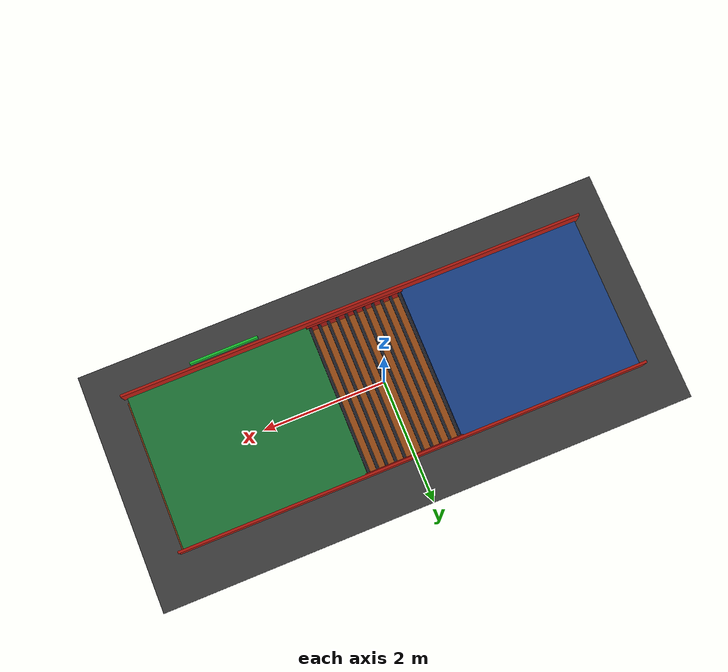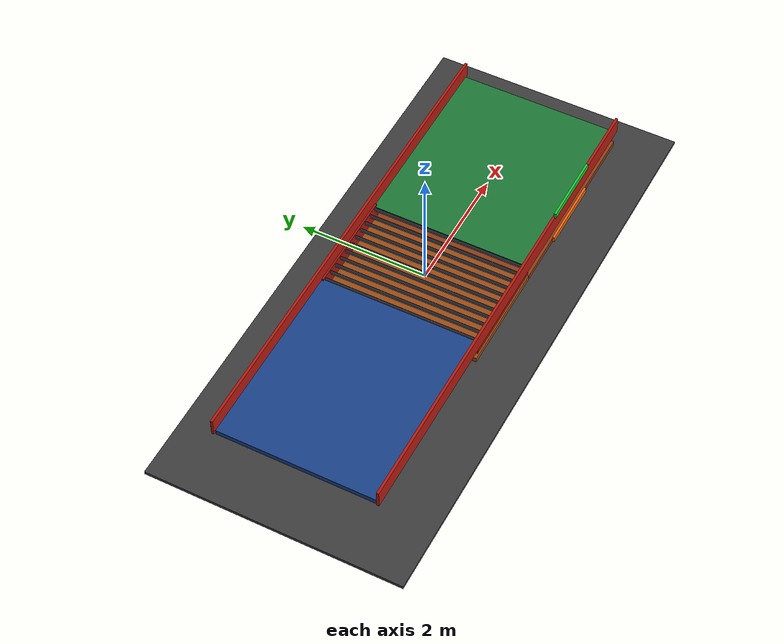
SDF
<?xml version="1.0"?>
<sdf version="1.10">
  <world name="infeed_size_separator_demo">
    <!-- Demo-specific gravity is intentionally increased to suppress prolonged
         bouncing of very light parcels after they enter the lower branch. -->
    <gravity>0 0 -12.0</gravity>
    <physics name="physics_1ms" type="ignored">
      <max_step_size>0.001</max_step_size>
      <real_time_factor>1.0</real_time_factor>
      <real_time_update_rate>1000</real_time_update_rate>
    </physics>

    <plugin filename="gz-sim-physics-system" name="gz::sim::systems::Physics"/>
    <plugin filename="gz-sim-user-commands-system" name="gz::sim::systems::UserCommands"/>
    <plugin filename="gz-sim-scene-broadcaster-system" name="gz::sim::systems::SceneBroadcaster"/>

    <scene>
      <ambient>0.45 0.45 0.45</ambient>
      <background>0.18 0.20 0.24</background>
      <grid>true</grid>
    </scene>

    <light type="directional" name="sun">
      <pose>-3 -4 8 0 0 0</pose>
      <cast_shadows>true</cast_shadows>
      <diffuse>0.95 0.95 0.95 1</diffuse>
      <specular>0.25 0.25 0.25 1</specular>
      <direction>0.3 0.4 -1.0</direction>
    </light>

    <model name="floor">
      <static>true</static>
      <pose>0 0 -0.505 0 0 0</pose>
      <link name="floor_link">
        <collision name="floor_collision"><geometry><box><size>9.000 4.000 0.050</size></box></geometry></collision>
        <visual name="floor_visual"><geometry><box><size>9.000 4.000 0.050</size></box></geometry><material><ambient>0.18 0.18 0.18 1</ambient><diffuse>0.25 0.25 0.25 1</diffuse></material></visual>
      </link>
    </model>

    <include>
      <uri>model://infeed_size_separator</uri>
      <name>infeed_size_separator</name>
      <pose>0 0 0 0 0 0</pose>
    </include>

    <!-- 150 mm centre pitch with 50 mm roller diameter leaves a 100 mm opening. -->
    <include><uri>model://separator_star_shaft</uri><name>screen_shaft_00</name><pose>-0.750 0 0 0 0 0</pose></include>
    <include><uri>model://separator_star_shaft</uri><name>screen_shaft_01</name><pose>-0.600 0 0 0 0 0</pose></include>
    <include><uri>model://separator_star_shaft</uri><name>screen_shaft_02</name><pose>-0.450 0 0 0 0 0</pose></include>
    <include><uri>model://separator_star_shaft</uri><name>screen_shaft_03</name><pose>-0.300 0 0 0 0 0</pose></include>
    <include><uri>model://separator_star_shaft</uri><name>screen_shaft_04</name><pose>-0.150 0 0 0 0 0</pose></include>
    <include><uri>model://separator_star_shaft</uri><name>screen_shaft_05</name><pose>0.000 0 0 0 0 0</pose></include>
    <include><uri>model://separator_star_shaft</uri><name>screen_shaft_06</name><pose>0.150 0 0 0 0 0</pose></include>
    <include><uri>model://separator_star_shaft</uri><name>screen_shaft_07</name><pose>0.300 0 0 0 0 0</pose></include>
    <include><uri>model://separator_star_shaft</uri><name>screen_shaft_08</name><pose>0.450 0 0 0 0 0</pose></include>
    <include><uri>model://separator_star_shaft</uri><name>screen_shaft_09</name><pose>0.600 0 0 0 0 0</pose></include>
    <include><uri>model://separator_star_shaft</uri><name>screen_shaft_10</name><pose>0.750 0 0 0 0 0</pose></include>

    <gui fullscreen="0">
      <plugin filename="MinimalScene" name="3D View">
        <gz-gui>
          <title>3D View</title>
          <property type="bool" key="showTitleBar">false</property>
          <property type="string" key="state">docked</property>
        </gz-gui>
        <engine>ogre</engine>
        <scene>scene</scene>
        <ambient_light>0.45 0.45 0.45</ambient_light>
        <background_color>0.18 0.20 0.24</background_color>
        <camera_pose>-7.4 -5.8 5.4 0 0.48 0.67</camera_pose>
      </plugin>

      <plugin filename="EntityContextMenuPlugin" name="Entity context menu">
        <gz-gui><property key="state" type="string">floating</property><property key="showTitleBar" type="bool">false</property></gz-gui>
      </plugin>
      <plugin filename="GzSceneManager" name="Scene Manager">
        <gz-gui><property key="state" type="string">floating</property><property key="showTitleBar" type="bool">false</property></gz-gui>
      </plugin>
      <plugin filename="InteractiveViewControl" name="Interactive view control">
        <gz-gui><property key="state" type="string">floating</property><property key="showTitleBar" type="bool">false</property></gz-gui>
      </plugin>
      <plugin filename="CameraTracking" name="Camera Tracking">
        <gz-gui><property key="state" type="string">floating</property><property key="showTitleBar" type="bool">false</property></gz-gui>
      </plugin>

      <plugin name="World control" filename="WorldControl">
        <gz-gui><title>World control</title><property type="bool" key="showTitleBar">0</property><property type="string" key="state">floating</property></gz-gui>
        <play_pause>1</play_pause><step>1</step><start_paused>0</start_paused>
      </plugin>
      <plugin filename="WorldStats" name="World stats"/>
    </gui>
  </world>
</sdf>

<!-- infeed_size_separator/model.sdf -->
<sdf version="1.10">
  <model name="infeed_size_separator">
    <static>true</static>

    <link name="entry_belt">
      <pose>-2.284 0 0.040 0 0 0</pose>
      <collision name="entry_belt_collision">
        <max_contacts>12</max_contacts>
        <geometry><box><size>3.000 2.500 0.080</size></box></geometry>
        <surface><friction><ode><mu>1.20</mu><mu2>0.80</mu2><fdir1>1 0 0</fdir1></ode></friction></surface>
      </collision>
      <visual name="entry_belt_visual">
        <geometry><box><size>3.000 2.500 0.080</size></box></geometry>
        <material><ambient>0.10 0.26 0.55 1</ambient><diffuse>0.10 0.26 0.55 1</diffuse></material>
      </visual>
    </link>
    <plugin filename="gz-sim-track-controller-system" name="gz::sim::systems::TrackController">
      <link>entry_belt</link>
      <track_orientation>0 0 0</track_orientation>
      <velocity_topic>/singulator/separator/infeed/cmd_vel</velocity_topic>
      <odometry_topic>/singulator/separator/infeed/odometry</odometry_topic>
      <odometry_publish_frequency>5</odometry_publish_frequency>
      <min_velocity>-2.5</min_velocity><max_velocity>2.5</max_velocity>
      <min_acceleration>-8.0</min_acceleration><max_acceleration>8.0</max_acceleration>
      <min_jerk>-40.0</min_jerk><max_jerk>40.0</max_jerk>
      <max_command_age>2.0</max_command_age>
    </plugin>

    <!-- Upper output starts 1 mm after the final 25 mm-radius roller and is
         4 mm lower than the roller crest. -->
    <link name="accepted_belt">
      <pose>2.276 0 0.036 0 0 0</pose>
      <collision name="accepted_belt_collision">
        <max_contacts>12</max_contacts>
        <geometry><box><size>3.000 2.500 0.080</size></box></geometry>
        <surface><friction><ode><mu>1.20</mu><mu2>0.80</mu2><fdir1>1 0 0</fdir1></ode></friction></surface>
      </collision>
      <visual name="accepted_belt_visual">
        <geometry><box><size>3.000 2.500 0.080</size></box></geometry>
        <material><ambient>0.12 0.48 0.22 1</ambient><diffuse>0.12 0.48 0.22 1</diffuse></material>
      </visual>
    </link>
    <plugin filename="gz-sim-track-controller-system" name="gz::sim::systems::TrackController">
      <link>accepted_belt</link>
      <track_orientation>0 0 0</track_orientation>
      <velocity_topic>/singulator/separator/accepted/cmd_vel</velocity_topic>
      <odometry_topic>/singulator/separator/accepted/odometry</odometry_topic>
      <odometry_publish_frequency>5</odometry_publish_frequency>
      <min_velocity>-2.5</min_velocity><max_velocity>2.5</max_velocity>
      <min_acceleration>-8.0</min_acceleration><max_acceleration>8.0</max_acceleration>
      <min_jerk>-40.0</min_jerk><max_jerk>40.0</max_jerk>
      <max_command_age>2.0</max_command_age>
    </plugin>

    <link name="reject_transfer_belt">
      <pose>0.000 0 -0.260 0 0 0</pose>
      <collision name="reject_transfer_belt_collision">
        <max_contacts>12</max_contacts>
        <geometry><box><size>1.700 2.500 0.080</size></box></geometry>
        <surface><friction><ode><mu>1.20</mu><mu2>0.80</mu2><fdir1>1 0 0</fdir1></ode></friction></surface>
      </collision>
      <visual name="reject_transfer_belt_visual">
        <geometry><box><size>1.700 2.500 0.080</size></box></geometry>
        <material><ambient>0.62 0.30 0.08 1</ambient><diffuse>0.62 0.30 0.08 1</diffuse></material>
      </visual>
    </link>
    <plugin filename="gz-sim-track-controller-system" name="gz::sim::systems::TrackController">
      <link>reject_transfer_belt</link>
      <track_orientation>0 0 0</track_orientation>
      <velocity_topic>/singulator/separator/reject_transfer/cmd_vel</velocity_topic>
      <odometry_topic>/singulator/separator/reject_transfer/odometry</odometry_topic>
      <odometry_publish_frequency>5</odometry_publish_frequency>
      <min_velocity>-2.5</min_velocity><max_velocity>2.5</max_velocity>
      <min_acceleration>-8.0</min_acceleration><max_acceleration>8.0</max_acceleration>
      <min_jerk>-40.0</min_jerk><max_jerk>40.0</max_jerk>
      <max_command_age>2.0</max_command_age>
    </plugin>

    <!-- The lower output uses the same 1 mm gap and 4 mm downward step. -->
    <link name="reject_belt">
      <pose>2.351 0 -0.264 0 0 0</pose>
      <collision name="reject_belt_collision">
        <max_contacts>12</max_contacts>
        <geometry><box><size>3.000 2.500 0.080</size></box></geometry>
        <surface><friction><ode><mu>1.20</mu><mu2>0.80</mu2><fdir1>1 0 0</fdir1></ode></friction></surface>
      </collision>
      <visual name="reject_belt_visual">
        <geometry><box><size>3.000 2.500 0.080</size></box></geometry>
        <material><ambient>0.56 0.24 0.08 1</ambient><diffuse>0.56 0.24 0.08 1</diffuse></material>
      </visual>
    </link>
    <plugin filename="gz-sim-track-controller-system" name="gz::sim::systems::TrackController">
      <link>reject_belt</link>
      <track_orientation>0 0 0</track_orientation>
      <velocity_topic>/singulator/separator/reject/cmd_vel</velocity_topic>
      <odometry_topic>/singulator/separator/reject/odometry</odometry_topic>
      <odometry_publish_frequency>5</odometry_publish_frequency>
      <min_velocity>-2.5</min_velocity><max_velocity>2.5</max_velocity>
      <min_acceleration>-8.0</min_acceleration><max_acceleration>8.0</max_acceleration>
      <min_jerk>-40.0</min_jerk><max_jerk>40.0</max_jerk>
      <max_command_age>2.0</max_command_age>
    </plugin>

    <link name="frame">
      <collision name="left_guard_collision"><pose>0 -1.270 0.180 0 0 0</pose><geometry><box><size>7.650 0.040 0.280</size></box></geometry></collision>
      <visual name="left_guard_visual"><pose>0 -1.270 0.180 0 0 0</pose><geometry><box><size>7.650 0.040 0.280</size></box></geometry><material><ambient>0.55 0.08 0.05 1</ambient><diffuse>0.72 0.10 0.06 1</diffuse></material></visual>
      <collision name="right_guard_collision"><pose>0 1.270 0.180 0 0 0</pose><geometry><box><size>7.650 0.040 0.280</size></box></geometry></collision>
      <visual name="right_guard_visual"><pose>0 1.270 0.180 0 0 0</pose><geometry><box><size>7.650 0.040 0.280</size></box></geometry><material><ambient>0.55 0.08 0.05 1</ambient><diffuse>0.72 0.10 0.06 1</diffuse></material></visual>

      <collision name="left_screen_cheek_collision"><pose>0 -1.235 -0.020 0 0 0</pose><geometry><box><size>1.620 0.030 0.260</size></box></geometry></collision>
      <visual name="left_screen_cheek_visual"><pose>0 -1.235 -0.020 0 0 0</pose><geometry><box><size>1.620 0.030 0.260</size></box></geometry><material><ambient>0.45 0.06 0.04 1</ambient><diffuse>0.65 0.08 0.05 1</diffuse></material></visual>
      <collision name="right_screen_cheek_collision"><pose>0 1.235 -0.020 0 0 0</pose><geometry><box><size>1.620 0.030 0.260</size></box></geometry></collision>
      <visual name="right_screen_cheek_visual"><pose>0 1.235 -0.020 0 0 0</pose><geometry><box><size>1.620 0.030 0.260</size></box></geometry><material><ambient>0.45 0.06 0.04 1</ambient><diffuse>0.65 0.08 0.05 1</diffuse></material></visual>

      <visual name="upper_label_visual"><pose>2.100 -1.310 0.420 0 0 0</pose><geometry><box><size>1.100 0.035 0.090</size></box></geometry><material><ambient>0.10 0.80 0.20 1</ambient><diffuse>0.10 0.80 0.20 1</diffuse></material></visual>
      <visual name="lower_label_visual"><pose>2.100 -1.310 -0.100 0 0 0</pose><geometry><box><size>1.100 0.035 0.090</size></box></geometry><material><ambient>0.95 0.40 0.05 1</ambient><diffuse>0.95 0.40 0.05 1</diffuse></material></visual>
    </link>
  </model>
</sdf>

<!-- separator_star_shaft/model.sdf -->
<sdf version="1.10">
  <model name="separator_star_shaft">
    <static>false</static>
    <self_collide>false</self_collide>

    <link name="base">
      <inertial>
        <mass>8.0</mass>
        <inertia>
          <ixx>4.2</ixx><ixy>0</ixy><ixz>0</ixz>
          <iyy>0.002</iyy><iyz>0</iyz><izz>4.2</izz>
        </inertia>
      </inertial>
      <visual name="left_bearing">
        <pose>0 -1.245 0.055 0 0 0</pose>
        <geometry><box><size>0.080 0.040 0.100</size></box></geometry>
        <material><ambient>0.25 0.25 0.28 1</ambient><diffuse>0.35 0.35 0.38 1</diffuse></material>
      </visual>
      <visual name="right_bearing">
        <pose>0 1.245 0.055 0 0 0</pose>
        <geometry><box><size>0.080 0.040 0.100</size></box></geometry>
        <material><ambient>0.25 0.25 0.28 1</ambient><diffuse>0.35 0.35 0.38 1</diffuse></material>
      </visual>
    </link>

    <link name="rotor">
      <pose>0 0 0.055 0 0 0</pose>
      <inertial>
        <mass>12.0</mass>
        <inertia>
          <ixx>6.16</ixx><ixy>0</ixy><ixz>0</ixz>
          <iyy>0.004</iyy><iyz>0</iyz><izz>6.16</izz>
        </inertia>
      </inertial>

      <!-- One continuous transverse roller replaces the former 25-disc row. -->
      <collision name="roller_collision">
        <pose>0 0 0 1.570796327 0 0</pose>
        <max_contacts>24</max_contacts>
        <geometry>
          <cylinder><radius>0.025</radius><length>2.480</length></cylinder>
        </geometry>
        <surface>
          <friction>
            <ode><mu>1.10</mu><mu2>0.85</mu2><fdir1>1 0 0</fdir1></ode>
          </friction>
          <bounce>
            <restitution_coefficient>0.0</restitution_coefficient>
            <threshold>1000</threshold>
          </bounce>
          <contact>
            <ode><kp>50000000</kp><kd>50000</kd><max_vel>0.03</max_vel><min_depth>0.0005</min_depth></ode>
          </contact>
        </surface>
      </collision>

      <visual name="roller_visual">
        <pose>0 0 0 1.570796327 0 0</pose>
        <geometry>
          <cylinder><radius>0.025</radius><length>2.480</length></cylinder>
        </geometry>
        <material>
          <ambient>0.08 0.08 0.10 1</ambient>
          <diffuse>0.14 0.14 0.17 1</diffuse>
          <specular>0.35 0.35 0.35 1</specular>
        </material>
      </visual>
    </link>

    <joint name="world_fixed" type="fixed">
      <parent>world</parent><child>base</child>
    </joint>
    <joint name="shaft_joint" type="revolute">
      <parent>base</parent><child>rotor</child>
      <axis>
        <xyz>0 1 0</xyz>
        <limit><lower>-1e16</lower><upper>1e16</upper><effort>400</effort><velocity>120</velocity></limit>
        <dynamics><damping>0.02</damping><friction>0.0</friction></dynamics>
      </axis>
    </joint>

    <plugin filename="gz-sim-joint-controller-system" name="gz::sim::systems::JointController">
      <joint_name>shaft_joint</joint_name>
      <topic>/singulator/separator/screen/cmd_vel</topic>
      <initial_velocity>80.0</initial_velocity>
    </plugin>
  </model>
</sdf>
